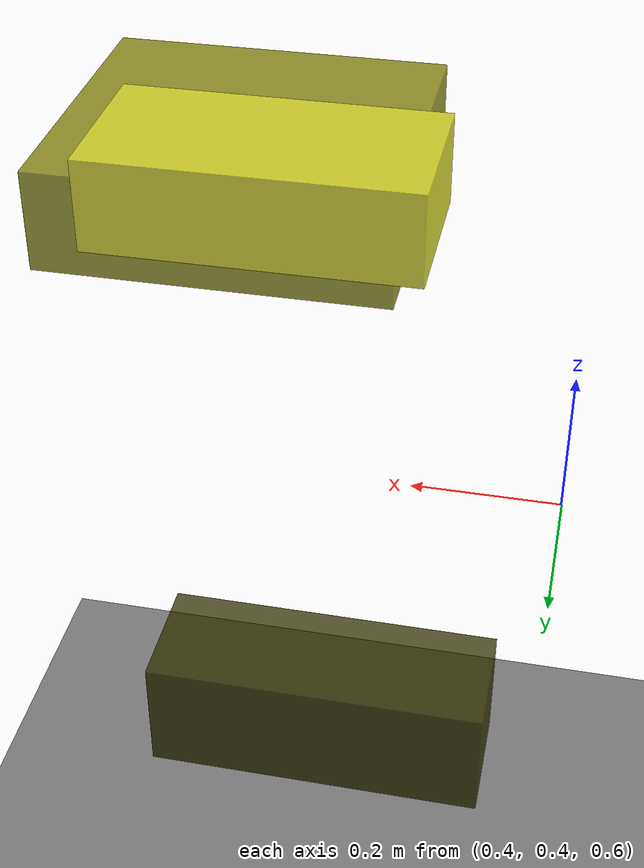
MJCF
<?xml version="1.0"?>
<mujoco model="obstacle_scene">
  <compiler angle="radian" coordinate="local"/>
  <option timestep="0.001" gravity="0 0 -9.81"/>

  <asset>
    <material name="obstacle_mat" rgba="0.8 0.8 0.0 0.8"/>
    <material name="ground_mat" rgba="0.5 0.5 0.5 1"/>
  </asset>

  <worldbody>
    <!-- Ground plane -->
    <geom name="ground" type="plane" size="3 3 0.1" material="ground_mat"/>

    <!-- Obstacles -->
    <body name="obstacle_0" pos="0.641432 0.772301 0.570977">
      <geom name="obs_0" type="box" size="0.189467 0.066010 0.069555" rgba="0.2 0.2 0.0 0.8"/>
    </body>
    <body name="obstacle_1" pos="0.779128 0.516202 1.116259">
      <geom name="obs_1" type="box" size="0.193123 0.173980 0.057227" rgba="0.5 0.5 0.0 0.8"/>
    </body>
    <body name="obstacle_2" pos="0.708801 0.708686 1.199804">
      <geom name="obs_2" type="box" size="0.167101 0.084573 0.048459" rgba="0.8 0.8 0.0 0.8"/>
    </body>
  </worldbody>
</mujoco>
